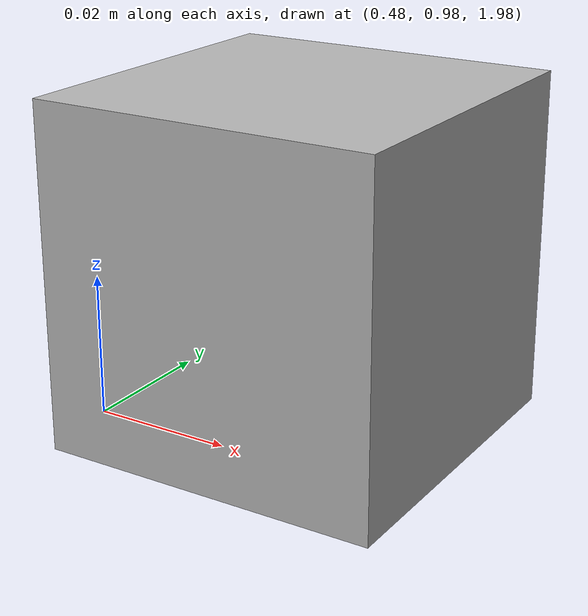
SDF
<?xml version='1.0'?>
<sdf version='1.4'>
  <model name='my_box'>
        <static>true</static>
          <link name='box'>
            <pose>0.5 1 2 0 0 0</pose>

            <collision name='collision'>
              <geometry>
                 <box>
                  <size>0.05 0.05 0.05</size>
                </box>
              </geometry>
            </collision>
            <visual name='visual'>
              <geometry>
                <box>
                  <size>0.05 0.05 0.05</size>
                </box>
              </geometry>
            </visual>
          </link>

  </model>
</sdf>
